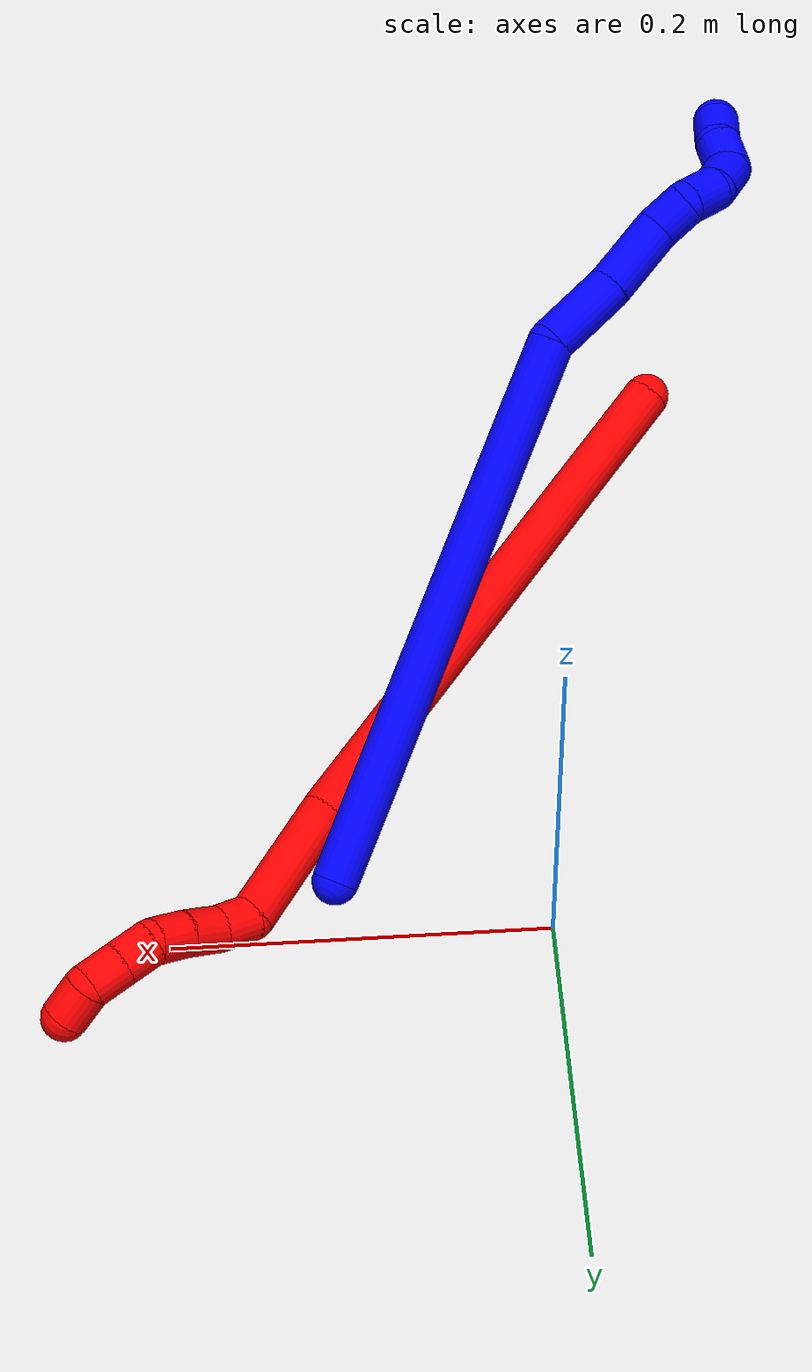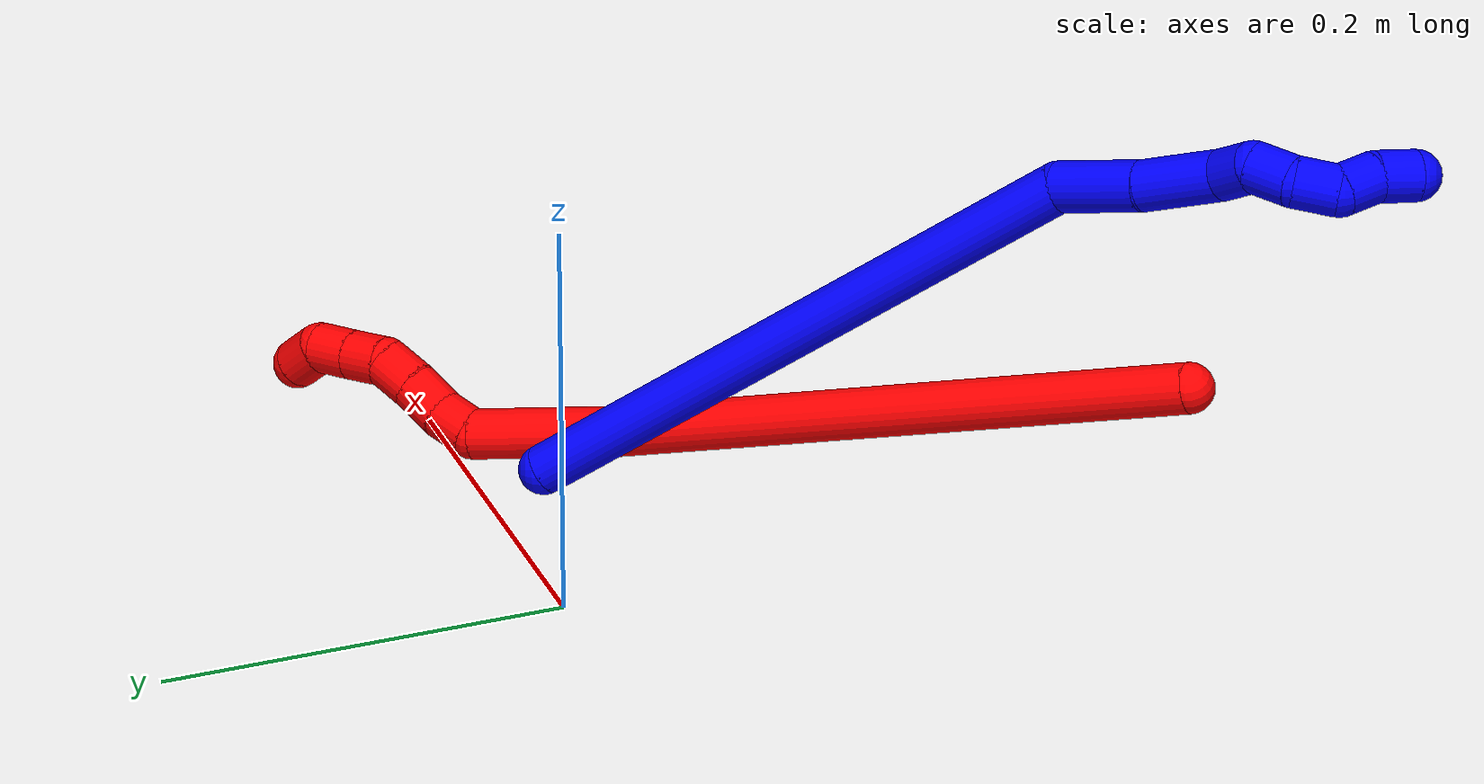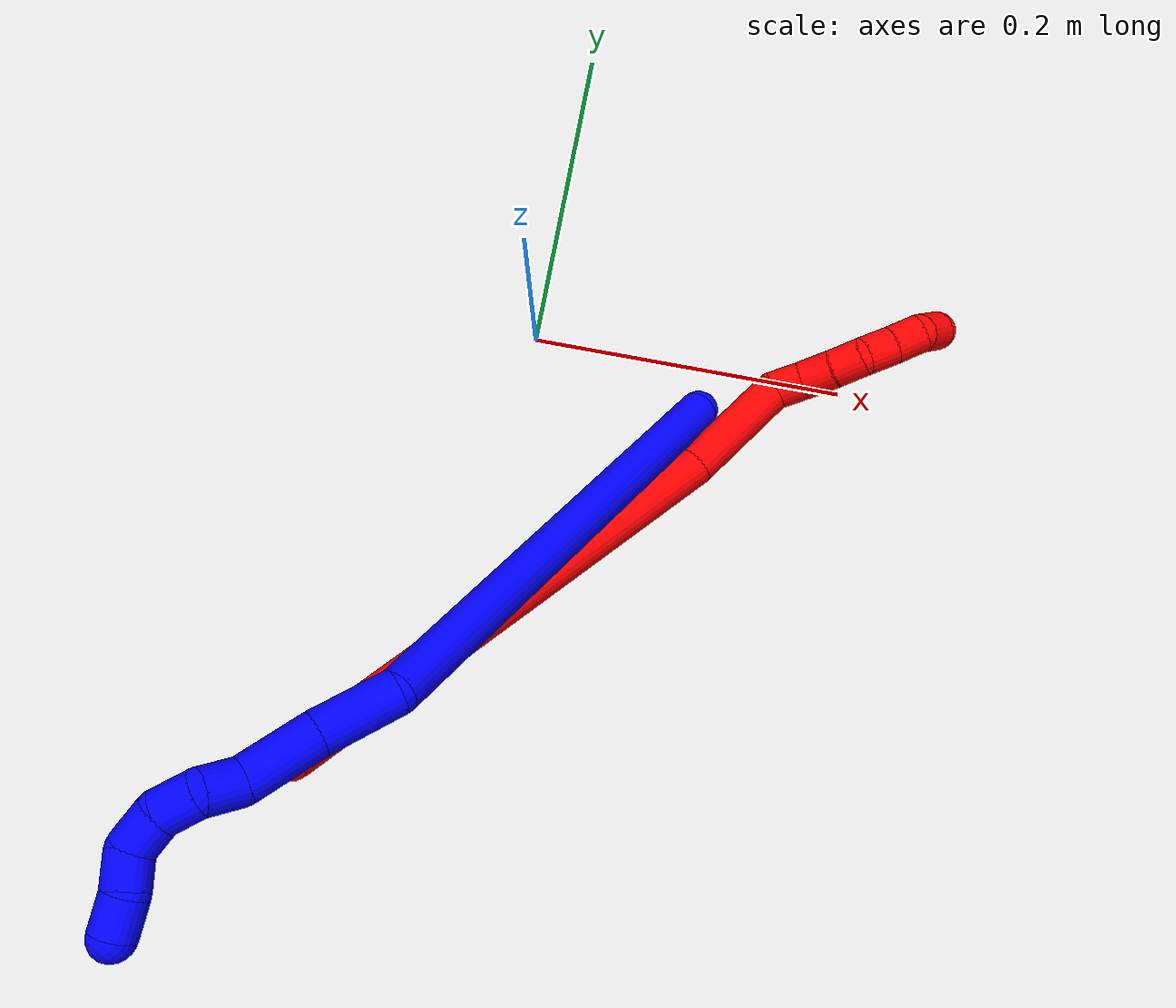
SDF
<sdf version="1.7">
 <world name="default">
  <plugin name="TubeGeneratorPlugin" filename="libtube_generator_plugin.so"/>
  <model name="photoneo_s_sensor">
   <static>1</static>
   <pose>0 0 2 1.57079 1.57079 3.14159</pose>
   <link name="link">
    <inertial><mass>0.1</mass></inertial>
    <sensor name="sensor" type="depth">
     <update_rate>30</update_rate>
     <camera>
      <horizontal_fov>1.22</horizontal_fov>
      <image><width>1920</width><height>1200</height><format>B8G8R8</format></image>
      <clip><near>0.1</near><far>4</far></clip>
      <depth_camera><output>points</output></depth_camera>
     </camera>
     <plugin name="camera_plugin" filename="libgazebo_ros_depth_camera.so">
      <baseline>0.2</baseline>
      <alwaysOn>1</alwaysOn>
      <updateRate>0.0</updateRate>
      <cameraName>camera_ir</cameraName>
      <imageTopicName>/camera/color/image_raw</imageTopicName>
      <cameraInfoTopicName>/camera/color/camera_info</cameraInfoTopicName>
      <depthImageTopicName>/camera/depth/image_raw</depthImageTopicName>
      <depthImageCameraInfoTopicName>/camera/depth/camera_info</depthImageCameraInfoTopicName>
      <pointCloudTopicName>/camera/depth/points</pointCloudTopicName>
      <frameName>fr_optical</frameName>
      <pointCloudCutoff>0.1</pointCloudCutoff>
      <pointCloudCutoffMax>2.0</pointCloudCutoffMax>
      <distortionK1>0</distortionK1>
      <distortionK2>0</distortionK2>
      <distortionK3>0</distortionK3>
      <distortionT1>0</distortionT1>
      <distortionT2>0</distortionT2>
      <CxPrime>0</CxPrime>
      <Cx>0</Cx>
      <Cy>0</Cy>
      <focalLength>0</focalLength>
      <hackBaseline>0</hackBaseline>
     </plugin>
    </sensor>
   </link>
  </model>
  <gravity>0 0 -9.8</gravity>
  <magnetic_field>6e-06 2.3e-05 -4.2e-05</magnetic_field>
  <atmosphere type="adiabatic"/>
  <physics name="default_physics" default="0" type="ode">
   <max_step_size>0.003</max_step_size>
   <real_time_factor>1</real_time_factor>
   <real_time_update_rate>1000</real_time_update_rate>
   <max_contacts>10000</max_contacts>
   <ode>
    <solver>
     <type>quick</type>
     <iters>100</iters>
     <sor>1.3</sor>
     <use_dynamic_moi_rescaling>0</use_dynamic_moi_rescaling>
    </solver>
    <constraints>
     <contact_max_correcting_vel>0</contact_max_correcting_vel>
     <contact_surface_layer>0.001</contact_surface_layer>
     <cfm>0</cfm>
     <erp>0.2</erp>
    </constraints>
   </ode>
  </physics>
  <scene><ambient>0.4 0.4 0.4 1</ambient><background>0.7 0.7 0.7 1</background><shadows>0</shadows></scene>
  <audio><device>default</device></audio>
  <spherical_coordinates>
   <surface_model>EARTH_WGS84</surface_model>
   <latitude_deg>0</latitude_deg>
   <longitude_deg>0</longitude_deg>
   <elevation>0</elevation>
   <heading_deg>0</heading_deg>
  </spherical_coordinates>
  <model name="bin">
   <static>1</static>
   <link name="bottom">
    <collision name="collision-bottom">
     <pose>0 0 -0.01 0 -0 0</pose>
     <geometry><box><size>0.8 0.6 0.02</size></box></geometry>
     <surface>
      <friction><ode><mu>100</mu><mu2>100</mu2></ode></friction>
      <contact><collide_bitmask>65535</collide_bitmask></contact>
     </surface>
    </collision>
   </link>
   <link name="west_wall">
    <collision name="collision-west_wall">
     <pose>-0.41 0 0.1 0 -0 0</pose>
     <geometry><box><size>0.02 0.6 0.2</size></box></geometry>
     <surface>
      <friction><ode><mu>100</mu><mu2>100</mu2></ode></friction>
      <contact><collide_bitmask>65535</collide_bitmask></contact>
     </surface>
    </collision>
   </link>
   <link name="east_wall">
    <collision name="collision-east_wall">
     <pose>0.41 0 0.1 0 -0 0</pose>
     <geometry><box><size>0.02 0.6 0.2</size></box></geometry>
     <surface>
      <friction><ode><mu>100</mu><mu2>100</mu2></ode></friction>
      <contact><collide_bitmask>65535</collide_bitmask></contact>
     </surface>
    </collision>
   </link>
   <link name="south_wall">
    <collision name="collision-south_wall">
     <pose>0 -0.31 0.1 0 -0 0</pose>
     <geometry><box><size>0.8 0.02 0.2</size></box></geometry>
     <surface>
      <friction><ode><mu>100</mu><mu2>100</mu2></ode></friction>
      <contact><collide_bitmask>65535</collide_bitmask></contact>
     </surface>
    </collision>
   </link>
   <link name="north_wall">
    <collision name="collision-north_wall">
     <pose>0 0.31 0.1 0 -0 0</pose>
     <geometry><box><size>0.8 0.02 0.2</size></box></geometry>
     <surface>
      <friction><ode><mu>100</mu><mu2>100</mu2></ode></friction>
      <contact><collide_bitmask>65535</collide_bitmask></contact>
     </surface>
    </collision>
   </link>
  </model>
  <model name="1">
   <static>0</static>
   <link name="1">
    <collision name="collision-cylinder-e_1_1_4">
     <pose>-0.052594 -0.057552 0.132516 0.409726 -0.349127 -0.073254</pose>
     <geometry><cylinder><radius>0.0125</radius><length>0.307499</length></cylinder></geometry>
     <surface>
      <friction><ode><mu>1.16</mu><mu2>1.16</mu2><slip1>0</slip1><slip2>0</slip2></ode></friction>
      <contact><ode><kp>1e+06</kp><kd>1</kd><max_vel>0</max_vel><min_depth>0.001</min_depth></ode></contact>
     </surface>
    </collision>
    <visual name="visual-cylinder-e_1_1_4">
     <pose>-0.052594 -0.057552 0.132516 0.409726 -0.349127 -0.073254</pose>
     <geometry><cylinder><radius>0.0125</radius><length>0.307499</length></cylinder></geometry>
     <material><ambient>0 0 1 1</ambient></material>
    </visual>
    <collision name="collision-cylinder-e_2_4_5">
     <pose>-0.102466 -0.123559 0.28583 0.386098 0.120652 0.023613</pose>
     <geometry><cylinder><radius>0.0125</radius><length>0.045232</length></cylinder></geometry>
     <surface>
      <friction><ode><mu>1.16</mu><mu2>1.16</mu2><slip1>0</slip1><slip2>0</slip2></ode></friction>
      <contact><ode><kp>1e+06</kp><kd>1</kd><max_vel>0</max_vel><min_depth>0.001</min_depth></ode></contact>
     </surface>
    </collision>
    <visual name="visual-cylinder-e_2_4_5">
     <pose>-0.102466 -0.123559 0.28583 0.386098 0.120652 0.023613</pose>
     <geometry><cylinder><radius>0.0125</radius><length>0.045232</length></cylinder></geometry>
     <material><ambient>0 0 1 1</ambient></material>
    </visual>
    <collision name="collision-cylinder-e_3_5_6">
     <pose>-0.0998 -0.139615 0.326435 0.366437 -0.002619 -0.000485</pose>
     <geometry><cylinder><radius>0.0125</radius><length>0.042428</length></cylinder></geometry>
     <surface>
      <friction><ode><mu>1.16</mu><mu2>1.16</mu2><slip1>0</slip1><slip2>0</slip2></ode></friction>
      <contact><ode><kp>1e+06</kp><kd>1</kd><max_vel>0</max_vel><min_depth>0.001</min_depth></ode></contact>
     </surface>
    </collision>
    <visual name="visual-cylinder-e_3_5_6">
     <pose>-0.0998 -0.139615 0.326435 0.366437 -0.002619 -0.000485</pose>
     <geometry><cylinder><radius>0.0125</radius><length>0.042428</length></cylinder></geometry>
     <material><ambient>0 0 1 1</ambient></material>
    </visual>
    <collision name="collision-cylinder-e_4_6_7">
     <pose>-0.099579 -0.154165 0.354284 0.712554 0.025966 0.009664</pose>
     <geometry><cylinder><radius>0.0125</radius><length>0.021268</length></cylinder></geometry>
     <surface>
      <friction><ode><mu>1.16</mu><mu2>1.16</mu2><slip1>0</slip1><slip2>0</slip2></ode></friction>
      <contact><ode><kp>1e+06</kp><kd>1</kd><max_vel>0</max_vel><min_depth>0.001</min_depth></ode></contact>
     </surface>
    </collision>
    <visual name="visual-cylinder-e_4_6_7">
     <pose>-0.099579 -0.154165 0.354284 0.712554 0.025966 0.009664</pose>
     <geometry><cylinder><radius>0.0125</radius><length>0.021268</length></cylinder></geometry>
     <material><ambient>0 0 1 1</ambient></material>
    </visual>
    <collision name="collision-cylinder-e_5_7_8">
     <pose>-0.09497 -0.162916 0.371968 0.1847 0.416083 0.039096</pose>
     <geometry><cylinder><radius>0.0125</radius><length>0.021443</length></cylinder></geometry>
     <surface>
      <friction><ode><mu>1.16</mu><mu2>1.16</mu2><slip1>0</slip1><slip2>0</slip2></ode></friction>
      <contact><ode><kp>1e+06</kp><kd>1</kd><max_vel>0</max_vel><min_depth>0.001</min_depth></ode></contact>
     </surface>
    </collision>
    <visual name="visual-cylinder-e_5_7_8">
     <pose>-0.09497 -0.162916 0.371968 0.1847 0.416083 0.039096</pose>
     <geometry><cylinder><radius>0.0125</radius><length>0.021443</length></cylinder></geometry>
     <material><ambient>0 0 1 1</ambient></material>
    </visual>
    <collision name="collision-cylinder-e_6_8_9">
     <pose>-0.088789 -0.162919 0.392151 -0.168901 0.171058 -0.014516</pose>
     <geometry><cylinder><radius>0.0125</radius><length>0.021706</length></cylinder></geometry>
     <surface>
      <friction><ode><mu>1.16</mu><mu2>1.16</mu2><slip1>0</slip1><slip2>0</slip2></ode></friction>
      <contact><ode><kp>1e+06</kp><kd>1</kd><max_vel>0</max_vel><min_depth>0.001</min_depth></ode></contact>
     </surface>
    </collision>
    <visual name="visual-cylinder-e_6_8_9">
     <pose>-0.088789 -0.162919 0.392151 -0.168901 0.171058 -0.014516</pose>
     <geometry><cylinder><radius>0.0125</radius><length>0.021706</length></cylinder></geometry>
     <material><ambient>0 0 1 1</ambient></material>
    </visual>
    <collision name="collision-cylinder-e_7_9_10">
     <pose>-0.091594 -0.156981 0.410517 -0.486784 -0.483901 0.122408</pose>
     <geometry><cylinder><radius>0.0125</radius><length>0.020002</length></cylinder></geometry>
     <surface>
      <friction><ode><mu>1.16</mu><mu2>1.16</mu2><slip1>0</slip1><slip2>0</slip2></ode></friction>
      <contact><ode><kp>1e+06</kp><kd>1</kd><max_vel>0</max_vel><min_depth>0.001</min_depth></ode></contact>
     </surface>
    </collision>
    <visual name="visual-cylinder-e_7_9_10">
     <pose>-0.091594 -0.156981 0.410517 -0.486784 -0.483901 0.122408</pose>
     <geometry><cylinder><radius>0.0125</radius><length>0.020002</length></cylinder></geometry>
     <material><ambient>0 0 1 1</ambient></material>
    </visual>
    <collision name="collision-cylinder-e_8_10_2">
     <pose>-0.097778 -0.148557 0.427484 -0.438019 -0.150472 0.033552</pose>
     <geometry><cylinder><radius>0.0125</radius><length>0.020423</length></cylinder></geometry>
     <surface>
      <friction><ode><mu>1.16</mu><mu2>1.16</mu2><slip1>0</slip1><slip2>0</slip2></ode></friction>
      <contact><ode><kp>1e+06</kp><kd>1</kd><max_vel>0</max_vel><min_depth>0.001</min_depth></ode></contact>
     </surface>
    </collision>
    <visual name="visual-cylinder-e_8_10_2">
     <pose>-0.097778 -0.148557 0.427484 -0.438019 -0.150472 0.033552</pose>
     <geometry><cylinder><radius>0.0125</radius><length>0.020423</length></cylinder></geometry>
     <material><ambient>0 0 1 1</ambient></material>
    </visual>
    <collision name="collision-sphere-2">
     <pose>-0.099308 -0.144275 0.436627 0 -0 0</pose>
     <geometry><sphere><radius>0.0125</radius></sphere></geometry>
     <surface>
      <friction><ode><mu>1.16</mu><mu2>1.16</mu2><slip1>0</slip1><slip2>0</slip2></ode></friction>
      <contact><ode><kp>1e+06</kp><kd>1</kd><max_vel>0</max_vel><min_depth>0.001</min_depth></ode></contact>
     </surface>
    </collision>
    <visual name="visual-sphere-2">
     <pose>-0.099308 -0.144275 0.436627 0 -0 0</pose>
     <geometry><sphere><radius>0.0125</radius></sphere></geometry>
     <material><ambient>0 0 1 1</ambient></material>
    </visual>
    <collision name="collision-sphere-10">
     <pose>-0.096247 -0.152839 0.418342 0 -0 0</pose>
     <geometry><sphere><radius>0.0125</radius></sphere></geometry>
     <surface>
      <friction><ode><mu>1.16</mu><mu2>1.16</mu2><slip1>0</slip1><slip2>0</slip2></ode></friction>
      <contact><ode><kp>1e+06</kp><kd>1</kd><max_vel>0</max_vel><min_depth>0.001</min_depth></ode></contact>
     </surface>
    </collision>
    <visual name="visual-sphere-10">
     <pose>-0.096247 -0.152839 0.418342 0 -0 0</pose>
     <geometry><sphere><radius>0.0125</radius></sphere></geometry>
     <material><ambient>0 0 1 1</ambient></material>
    </visual>
    <collision name="collision-sphere-9">
     <pose>-0.086942 -0.161122 0.402693 0 -0 0</pose>
     <geometry><sphere><radius>0.0125</radius></sphere></geometry>
     <surface>
      <friction><ode><mu>1.16</mu><mu2>1.16</mu2><slip1>0</slip1><slip2>0</slip2></ode></friction>
      <contact><ode><kp>1e+06</kp><kd>1</kd><max_vel>0</max_vel><min_depth>0.001</min_depth></ode></contact>
     </surface>
    </collision>
    <visual name="visual-sphere-9">
     <pose>-0.086942 -0.161122 0.402693 0 -0 0</pose>
     <geometry><sphere><radius>0.0125</radius></sphere></geometry>
     <material><ambient>0 0 1 1</ambient></material>
    </visual>
    <collision name="collision-sphere-4">
     <pose>-0.105189 -0.115105 0.265032 0 -0 0</pose>
     <geometry><sphere><radius>0.0125</radius></sphere></geometry>
     <surface>
      <friction><ode><mu>1.16</mu><mu2>1.16</mu2><slip1>0</slip1><slip2>0</slip2></ode></friction>
      <contact><ode><kp>1e+06</kp><kd>1</kd><max_vel>0</max_vel><min_depth>0.001</min_depth></ode></contact>
     </surface>
    </collision>
    <visual name="visual-sphere-4">
     <pose>-0.105189 -0.115105 0.265032 0 -0 0</pose>
     <geometry><sphere><radius>0.0125</radius></sphere></geometry>
     <material><ambient>0 0 1 1</ambient></material>
    </visual>
    <collision name="collision-sphere-1">
     <geometry><sphere><radius>0.0125</radius></sphere></geometry>
     <surface>
      <friction><ode><mu>1.16</mu><mu2>1.16</mu2><slip1>0</slip1><slip2>0</slip2></ode></friction>
      <contact><ode><kp>1e+06</kp><kd>1</kd><max_vel>0</max_vel><min_depth>0.001</min_depth></ode></contact>
     </surface>
    </collision>
    <visual name="visual-sphere-1">
     <geometry><sphere><radius>0.0125</radius></sphere></geometry>
     <material><ambient>0 0 1 1</ambient></material>
    </visual>
    <collision name="collision-sphere-8">
     <pose>-0.090636 -0.164717 0.381608 0 -0 0</pose>
     <geometry><sphere><radius>0.0125</radius></sphere></geometry>
     <surface>
      <friction><ode><mu>1.16</mu><mu2>1.16</mu2><slip1>0</slip1><slip2>0</slip2></ode></friction>
      <contact><ode><kp>1e+06</kp><kd>1</kd><max_vel>0</max_vel><min_depth>0.001</min_depth></ode></contact>
     </surface>
    </collision>
    <visual name="visual-sphere-8">
     <pose>-0.090636 -0.164717 0.381608 0 -0 0</pose>
     <geometry><sphere><radius>0.0125</radius></sphere></geometry>
     <material><ambient>0 0 1 1</ambient></material>
    </visual>
    <collision name="collision-sphere-5">
     <pose>-0.099744 -0.132014 0.306629 0 -0 0</pose>
     <geometry><sphere><radius>0.0125</radius></sphere></geometry>
     <surface>
      <friction><ode><mu>1.16</mu><mu2>1.16</mu2><slip1>0</slip1><slip2>0</slip2></ode></friction>
      <contact><ode><kp>1e+06</kp><kd>1</kd><max_vel>0</max_vel><min_depth>0.001</min_depth></ode></contact>
     </surface>
    </collision>
    <visual name="visual-sphere-5">
     <pose>-0.099744 -0.132014 0.306629 0 -0 0</pose>
     <geometry><sphere><radius>0.0125</radius></sphere></geometry>
     <material><ambient>0 0 1 1</ambient></material>
    </visual>
    <collision name="collision-sphere-6">
     <pose>-0.099856 -0.147215 0.34624 0 -0 0</pose>
     <geometry><sphere><radius>0.0125</radius></sphere></geometry>
     <surface>
      <friction><ode><mu>1.16</mu><mu2>1.16</mu2><slip1>0</slip1><slip2>0</slip2></ode></friction>
      <contact><ode><kp>1e+06</kp><kd>1</kd><max_vel>0</max_vel><min_depth>0.001</min_depth></ode></contact>
     </surface>
    </collision>
    <visual name="visual-sphere-6">
     <pose>-0.099856 -0.147215 0.34624 0 -0 0</pose>
     <geometry><sphere><radius>0.0125</radius></sphere></geometry>
     <material><ambient>0 0 1 1</ambient></material>
    </visual>
    <collision name="collision-sphere-7">
     <pose>-0.099303 -0.161115 0.362328 0 -0 0</pose>
     <geometry><sphere><radius>0.0125</radius></sphere></geometry>
     <surface>
      <friction><ode><mu>1.16</mu><mu2>1.16</mu2><slip1>0</slip1><slip2>0</slip2></ode></friction>
      <contact><ode><kp>1e+06</kp><kd>1</kd><max_vel>0</max_vel><min_depth>0.001</min_depth></ode></contact>
     </surface>
    </collision>
    <visual name="visual-sphere-7">
     <pose>-0.099303 -0.161115 0.362328 0 -0 0</pose>
     <geometry><sphere><radius>0.0125</radius></sphere></geometry>
     <material><ambient>0 0 1 1</ambient></material>
    </visual>
    <inertial>
     <pose>-0.069904 -0.091384 0.216983 0 -0 0</pose>
     <mass>0.5</mass>
     <inertia>
      <ixx>0.002132</ixx>
      <ixy>0</ixy>
      <ixz>0</ixz>
      <iyy>0.002097</iyy>
      <iyz>0</iyz>
      <izz>0.001784</izz>
     </inertia>
    </inertial>
   </link>
   <pose>0.112404 -0.029556 0.011486 -1.45015 0.799923 2.72738</pose>
  </model>
  <model name="2">
   <static>0</static>
   <link name="2">
    <collision name="collision-cylinder-e_1_1_4">
     <pose>0.095644 0.112401 -0.035325 -1.8753 0.681879 -0.900568</pose>
     <geometry><cylinder><radius>0.0125</radius><length>0.30351</length></cylinder></geometry>
     <surface>
      <friction><ode><mu>1.16</mu><mu2>1.16</mu2><slip1>0</slip1><slip2>0</slip2></ode></friction>
      <contact><ode><kp>1e+06</kp><kd>1</kd><max_vel>0</max_vel><min_depth>0.001</min_depth></ode></contact>
     </surface>
    </collision>
    <visual name="visual-cylinder-e_1_1_4">
     <pose>0.095644 0.112401 -0.035325 -1.8753 0.681879 -0.900568</pose>
     <geometry><cylinder><radius>0.0125</radius><length>0.30351</length></cylinder></geometry>
     <material><ambient>1 0 0 1</ambient></material>
    </visual>
    <collision name="collision-cylinder-e_2_4_5">
     <pose>0.213151 0.254179 -0.0738 -1.67764 0.637047 -0.703495</pose>
     <geometry><cylinder><radius>0.0125</radius><length>0.07351</length></cylinder></geometry>
     <surface>
      <friction><ode><mu>1.16</mu><mu2>1.16</mu2><slip1>0</slip1><slip2>0</slip2></ode></friction>
      <contact><ode><kp>1e+06</kp><kd>1</kd><max_vel>0</max_vel><min_depth>0.001</min_depth></ode></contact>
     </surface>
    </collision>
    <visual name="visual-cylinder-e_2_4_5">
     <pose>0.213151 0.254179 -0.0738 -1.67764 0.637047 -0.703495</pose>
     <geometry><cylinder><radius>0.0125</radius><length>0.07351</length></cylinder></geometry>
     <material><ambient>1 0 0 1</ambient></material>
    </visual>
    <collision name="collision-cylinder-e_3_5_6">
     <pose>0.244468 0.287148 -0.076257 -1.38001 1.2016 -1.02952</pose>
     <geometry><cylinder><radius>0.0125</radius><length>0.020276</length></cylinder></geometry>
     <surface>
      <friction><ode><mu>1.16</mu><mu2>1.16</mu2><slip1>0</slip1><slip2>0</slip2></ode></friction>
      <contact><ode><kp>1e+06</kp><kd>1</kd><max_vel>0</max_vel><min_depth>0.001</min_depth></ode></contact>
     </surface>
    </collision>
    <visual name="visual-cylinder-e_3_5_6">
     <pose>0.244468 0.287148 -0.076257 -1.38001 1.2016 -1.02952</pose>
     <geometry><cylinder><radius>0.0125</radius><length>0.020276</length></cylinder></geometry>
     <material><ambient>1 0 0 1</ambient></material>
    </visual>
    <collision name="collision-cylinder-e_4_6_7">
     <pose>0.263856 0.29341 -0.072579 -0.729723 1.18754 -0.504683</pose>
     <geometry><cylinder><radius>0.0125</radius><length>0.021418</length></cylinder></geometry>
     <surface>
      <friction><ode><mu>1.16</mu><mu2>1.16</mu2><slip1>0</slip1><slip2>0</slip2></ode></friction>
      <contact><ode><kp>1e+06</kp><kd>1</kd><max_vel>0</max_vel><min_depth>0.001</min_depth></ode></contact>
     </surface>
    </collision>
    <visual name="visual-cylinder-e_4_6_7">
     <pose>0.263856 0.29341 -0.072579 -0.729723 1.18754 -0.504683</pose>
     <geometry><cylinder><radius>0.0125</radius><length>0.021418</length></cylinder></geometry>
     <material><ambient>1 0 0 1</ambient></material>
    </visual>
    <collision name="collision-cylinder-e_5_7_8">
     <pose>0.283091 0.299325 -0.067268 -0.94891 1.16535 -0.652699</pose>
     <geometry><cylinder><radius>0.0125</radius><length>0.020247</length></cylinder></geometry>
     <surface>
      <friction><ode><mu>1.16</mu><mu2>1.16</mu2><slip1>0</slip1><slip2>0</slip2></ode></friction>
      <contact><ode><kp>1e+06</kp><kd>1</kd><max_vel>0</max_vel><min_depth>0.001</min_depth></ode></contact>
     </surface>
    </collision>
    <visual name="visual-cylinder-e_5_7_8">
     <pose>0.283091 0.299325 -0.067268 -0.94891 1.16535 -0.652699</pose>
     <geometry><cylinder><radius>0.0125</radius><length>0.020247</length></cylinder></geometry>
     <material><ambient>1 0 0 1</ambient></material>
    </visual>
    <collision name="collision-cylinder-e_6_8_9">
     <pose>0.300671 0.307836 -0.066914 -1.92933 0.974109 -1.30485</pose>
     <geometry><cylinder><radius>0.0125</radius><length>0.020013</length></cylinder></geometry>
     <surface>
      <friction><ode><mu>1.16</mu><mu2>1.16</mu2><slip1>0</slip1><slip2>0</slip2></ode></friction>
      <contact><ode><kp>1e+06</kp><kd>1</kd><max_vel>0</max_vel><min_depth>0.001</min_depth></ode></contact>
     </surface>
    </collision>
    <visual name="visual-cylinder-e_6_8_9">
     <pose>0.300671 0.307836 -0.066914 -1.92933 0.974109 -1.30485</pose>
     <geometry><cylinder><radius>0.0125</radius><length>0.020013</length></cylinder></geometry>
     <material><ambient>1 0 0 1</ambient></material>
    </visual>
    <collision name="collision-cylinder-e_7_9_10">
     <pose>0.31756 0.318742 -0.070464 -1.84328 0.973531 -1.21796</pose>
     <geometry><cylinder><radius>0.0125</radius><length>0.020829</length></cylinder></geometry>
     <surface>
      <friction><ode><mu>1.16</mu><mu2>1.16</mu2><slip1>0</slip1><slip2>0</slip2></ode></friction>
      <contact><ode><kp>1e+06</kp><kd>1</kd><max_vel>0</max_vel><min_depth>0.001</min_depth></ode></contact>
     </surface>
    </collision>
    <visual name="visual-cylinder-e_7_9_10">
     <pose>0.31756 0.318742 -0.070464 -1.84328 0.973531 -1.21796</pose>
     <geometry><cylinder><radius>0.0125</radius><length>0.020829</length></cylinder></geometry>
     <material><ambient>1 0 0 1</ambient></material>
    </visual>
    <collision name="collision-cylinder-e_8_10_2">
     <pose>0.330965 0.329853 -0.079045 -2.47868 0.49462 -1.26588</pose>
     <geometry><cylinder><radius>0.0125</radius><length>0.020196</length></cylinder></geometry>
     <surface>
      <friction><ode><mu>1.16</mu><mu2>1.16</mu2><slip1>0</slip1><slip2>0</slip2></ode></friction>
      <contact><ode><kp>1e+06</kp><kd>1</kd><max_vel>0</max_vel><min_depth>0.001</min_depth></ode></contact>
     </surface>
    </collision>
    <visual name="visual-cylinder-e_8_10_2">
     <pose>0.330965 0.329853 -0.079045 -2.47868 0.49462 -1.26588</pose>
     <geometry><cylinder><radius>0.0125</radius><length>0.020196</length></cylinder></geometry>
     <material><ambient>1 0 0 1</ambient></material>
    </visual>
    <collision name="collision-sphere-2">
     <pose>0.335759 0.335322 -0.086051 0 -0 0</pose>
     <geometry><sphere><radius>0.0125</radius></sphere></geometry>
     <surface>
      <friction><ode><mu>1.16</mu><mu2>1.16</mu2><slip1>0</slip1><slip2>0</slip2></ode></friction>
      <contact><ode><kp>1e+06</kp><kd>1</kd><max_vel>0</max_vel><min_depth>0.001</min_depth></ode></contact>
     </surface>
    </collision>
    <visual name="visual-sphere-2">
     <pose>0.335759 0.335322 -0.086051 0 -0 0</pose>
     <geometry><sphere><radius>0.0125</radius></sphere></geometry>
     <material><ambient>1 0 0 1</ambient></material>
    </visual>
    <collision name="collision-sphere-10">
     <pose>0.326172 0.324383 -0.07204 0 -0 0</pose>
     <geometry><sphere><radius>0.0125</radius></sphere></geometry>
     <surface>
      <friction><ode><mu>1.16</mu><mu2>1.16</mu2><slip1>0</slip1><slip2>0</slip2></ode></friction>
      <contact><ode><kp>1e+06</kp><kd>1</kd><max_vel>0</max_vel><min_depth>0.001</min_depth></ode></contact>
     </surface>
    </collision>
    <visual name="visual-sphere-10">
     <pose>0.326172 0.324383 -0.07204 0 -0 0</pose>
     <geometry><sphere><radius>0.0125</radius></sphere></geometry>
     <material><ambient>1 0 0 1</ambient></material>
    </visual>
    <collision name="collision-sphere-9">
     <pose>0.308949 0.313101 -0.068887 0 -0 0</pose>
     <geometry><sphere><radius>0.0125</radius></sphere></geometry>
     <surface>
      <friction><ode><mu>1.16</mu><mu2>1.16</mu2><slip1>0</slip1><slip2>0</slip2></ode></friction>
      <contact><ode><kp>1e+06</kp><kd>1</kd><max_vel>0</max_vel><min_depth>0.001</min_depth></ode></contact>
     </surface>
    </collision>
    <visual name="visual-sphere-9">
     <pose>0.308949 0.313101 -0.068887 0 -0 0</pose>
     <geometry><sphere><radius>0.0125</radius></sphere></geometry>
     <material><ambient>1 0 0 1</ambient></material>
    </visual>
    <collision name="collision-sphere-4">
     <pose>0.191288 0.224802 -0.070649 0 -0 0</pose>
     <geometry><sphere><radius>0.0125</radius></sphere></geometry>
     <surface>
      <friction><ode><mu>1.16</mu><mu2>1.16</mu2><slip1>0</slip1><slip2>0</slip2></ode></friction>
      <contact><ode><kp>1e+06</kp><kd>1</kd><max_vel>0</max_vel><min_depth>0.001</min_depth></ode></contact>
     </surface>
    </collision>
    <visual name="visual-sphere-4">
     <pose>0.191288 0.224802 -0.070649 0 -0 0</pose>
     <geometry><sphere><radius>0.0125</radius></sphere></geometry>
     <material><ambient>1 0 0 1</ambient></material>
    </visual>
    <collision name="collision-sphere-1">
     <geometry><sphere><radius>0.0125</radius></sphere></geometry>
     <surface>
      <friction><ode><mu>1.16</mu><mu2>1.16</mu2><slip1>0</slip1><slip2>0</slip2></ode></friction>
      <contact><ode><kp>1e+06</kp><kd>1</kd><max_vel>0</max_vel><min_depth>0.001</min_depth></ode></contact>
     </surface>
    </collision>
    <visual name="visual-sphere-1">
     <geometry><sphere><radius>0.0125</radius></sphere></geometry>
     <material><ambient>1 0 0 1</ambient></material>
    </visual>
    <collision name="collision-sphere-8">
     <pose>0.292394 0.302571 -0.064941 0 -0 0</pose>
     <geometry><sphere><radius>0.0125</radius></sphere></geometry>
     <surface>
      <friction><ode><mu>1.16</mu><mu2>1.16</mu2><slip1>0</slip1><slip2>0</slip2></ode></friction>
      <contact><ode><kp>1e+06</kp><kd>1</kd><max_vel>0</max_vel><min_depth>0.001</min_depth></ode></contact>
     </surface>
    </collision>
    <visual name="visual-sphere-8">
     <pose>0.292394 0.302571 -0.064941 0 -0 0</pose>
     <geometry><sphere><radius>0.0125</radius></sphere></geometry>
     <material><ambient>1 0 0 1</ambient></material>
    </visual>
    <collision name="collision-sphere-5">
     <pose>0.235014 0.283556 -0.076951 0 -0 0</pose>
     <geometry><sphere><radius>0.0125</radius></sphere></geometry>
     <surface>
      <friction><ode><mu>1.16</mu><mu2>1.16</mu2><slip1>0</slip1><slip2>0</slip2></ode></friction>
      <contact><ode><kp>1e+06</kp><kd>1</kd><max_vel>0</max_vel><min_depth>0.001</min_depth></ode></contact>
     </surface>
    </collision>
    <visual name="visual-sphere-5">
     <pose>0.235014 0.283556 -0.076951 0 -0 0</pose>
     <geometry><sphere><radius>0.0125</radius></sphere></geometry>
     <material><ambient>1 0 0 1</ambient></material>
    </visual>
    <collision name="collision-sphere-6">
     <pose>0.253923 0.29074 -0.075564 0 -0 0</pose>
     <geometry><sphere><radius>0.0125</radius></sphere></geometry>
     <surface>
      <friction><ode><mu>1.16</mu><mu2>1.16</mu2><slip1>0</slip1><slip2>0</slip2></ode></friction>
      <contact><ode><kp>1e+06</kp><kd>1</kd><max_vel>0</max_vel><min_depth>0.001</min_depth></ode></contact>
     </surface>
    </collision>
    <visual name="visual-sphere-6">
     <pose>0.253923 0.29074 -0.075564 0 -0 0</pose>
     <geometry><sphere><radius>0.0125</radius></sphere></geometry>
     <material><ambient>1 0 0 1</ambient></material>
    </visual>
    <collision name="collision-sphere-7">
     <pose>0.273788 0.29608 -0.069594 0 -0 0</pose>
     <geometry><sphere><radius>0.0125</radius></sphere></geometry>
     <surface>
      <friction><ode><mu>1.16</mu><mu2>1.16</mu2><slip1>0</slip1><slip2>0</slip2></ode></friction>
      <contact><ode><kp>1e+06</kp><kd>1</kd><max_vel>0</max_vel><min_depth>0.001</min_depth></ode></contact>
     </surface>
    </collision>
    <visual name="visual-sphere-7">
     <pose>0.273788 0.29608 -0.069594 0 -0 0</pose>
     <geometry><sphere><radius>0.0125</radius></sphere></geometry>
     <material><ambient>1 0 0 1</ambient></material>
    </visual>
    <inertial>
     <pose>0.160707 0.180856 -0.050025 0 -0 0</pose>
     <mass>0.5</mass>
     <inertia>
      <ixx>-0.000268</ixx>
      <ixy>0</ixy>
      <ixz>0</ixz>
      <iyy>-0.000737</iyy>
      <iyz>0</iyz>
      <izz>-0.003279</izz>
     </inertia>
    </inertial>
   </link>
   <pose>-0.077013 -0.288466 0.102505 -0.275808 -0.243481 0.113261</pose>
  </model>
 </world>
</sdf>
